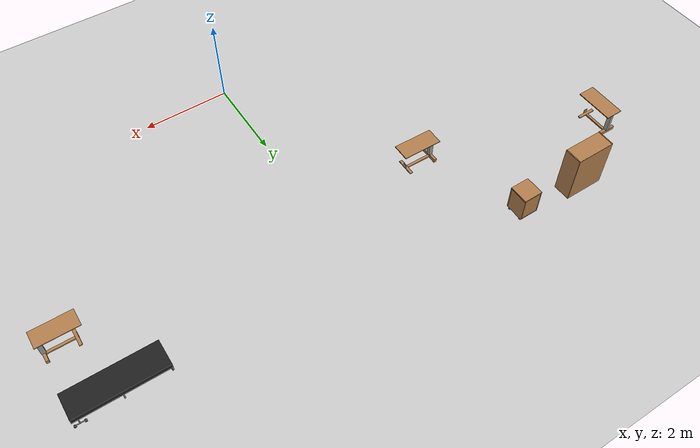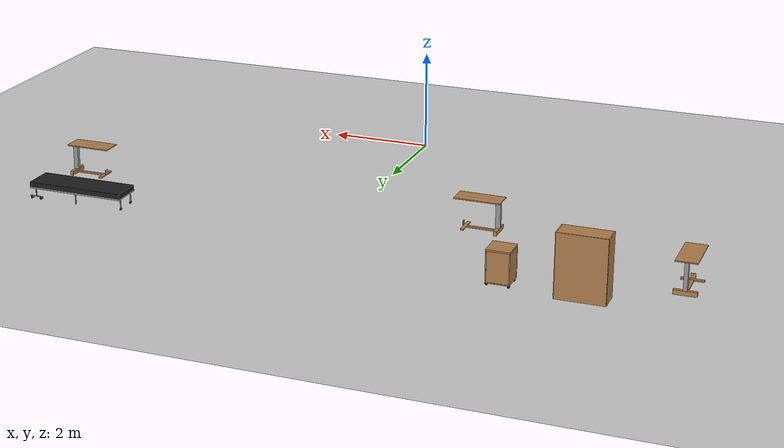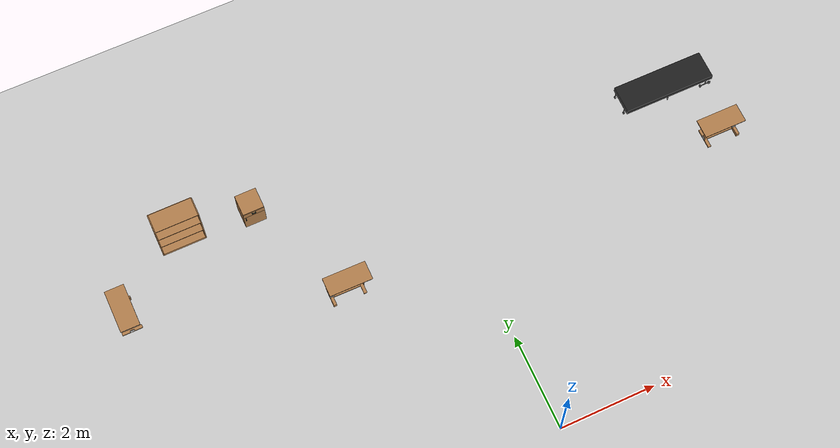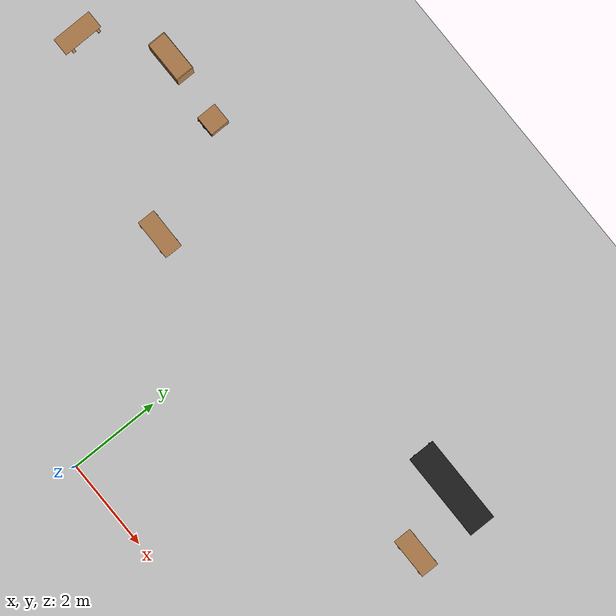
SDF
<sdf version="1.6">
 <world name="default">
  <model name="ground_plane">
   <static>1</static>
   <link name="link">
    <collision name="collision">
     <geometry><plane><normal>0 0 1</normal><size>100 100</size></plane></geometry>
     <surface><friction><ode><mu>100</mu><mu2>50</mu2></ode></friction></surface>
    </collision>
    <visual name="visual">
     <cast_shadows>0</cast_shadows>
     <geometry><plane><normal>0 0 1</normal><size>100 100</size></plane></geometry>
     <material>
      <script><uri>file://media/materials/scripts/gazebo.material</uri><name>Gazebo/Grey</name></script>
     </material>
    </visual>
   </link>
  </model>
  <model name="bed">
   <link name="link">
    <inertial>
     <mass>10</mass>
     <inertia><ixx>1</ixx><ixy>0</ixy><ixz>0</ixz><iyy>1</iyy><iyz>0</iyz><izz>1</izz></inertia>
    </inertial>
    <visual name="cushion">
     <pose>-0.295 -0.975 0.2875 0 -0 0</pose>
     <geometry><box><size>0.59 1.95 0.095</size></box></geometry>
     <material>
      <script>
       <uri>model://base_materials/cloth/scripts</uri>
       <uri>model://base_materials/cloth/textures</uri>
       <name>cloth/black</name>
      </script>
     </material>
    </visual>
    <collision name="collision_cushion">
     <pose>-0.295 -0.975 0.2875 0 -0 0</pose>
     <geometry><box><size>0.59 1.95 0.095</size></box></geometry>
    </collision>
    <visual name="top_frame">
     <pose>-0.295 -0.975 0.225 0 -0 0</pose>
     <geometry><box><size>0.59 1.95 0.03</size></box></geometry>
     <material>
      <script><uri>model://base_materials/color/scripts</uri><name>hsr_color/grey</name></script>
     </material>
    </visual>
    <collision name="collision_top_frame">
     <pose>-0.295 -0.975 0.225 0 -0 0</pose>
     <geometry><box><size>0.59 1.95 0.03</size></box></geometry>
    </collision>
    <visual name="right_front_pole">
     <pose>-0.075 -0.0125 0.125 0 -0 0</pose>
     <geometry><cylinder><radius>0.0125</radius><length>0.17</length></cylinder></geometry>
     <material>
      <script><uri>model://base_materials/color/scripts</uri><name>hsr_color/grey</name></script>
     </material>
    </visual>
    <collision name="collision_right_front_pole">
     <pose>-0.075 -0.0125 0.125 0 -0 0</pose>
     <geometry><cylinder><radius>0.0125</radius><length>0.17</length></cylinder></geometry>
    </collision>
    <visual name="right_front_caster">
     <pose>-0.075 -0.0125 0.02 0 1.57 0</pose>
     <geometry><cylinder><radius>0.02</radius><length>0.04</length></cylinder></geometry>
     <material><script><name>Gazebo/Black</name><uri>__default__</uri></script></material>
    </visual>
    <collision name="collision_right_front_caster">
     <pose>-0.075 -0.0125 0.02 0 1.57 0</pose>
     <geometry><cylinder><radius>0.02</radius><length>0.04</length></cylinder></geometry>
    </collision>
    <visual name="right_back_pole">
     <pose>-0.46 -0.0125 0.125 0 -0 0</pose>
     <geometry><cylinder><radius>0.0125</radius><length>0.17</length></cylinder></geometry>
     <material>
      <script><uri>model://base_materials/color/scripts</uri><name>hsr_color/grey</name></script>
     </material>
    </visual>
    <collision name="collision_right_back_pole">
     <pose>-0.46 -0.0125 0.125 0 -0 0</pose>
     <geometry><cylinder><radius>0.0125</radius><length>0.17</length></cylinder></geometry>
    </collision>
    <visual name="right_back_caster">
     <pose>-0.46 -0.0125 0.02 0 1.57 0</pose>
     <geometry><cylinder><radius>0.02</radius><length>0.04</length></cylinder></geometry>
     <material><script><name>Gazebo/Black</name><uri>__default__</uri></script></material>
    </visual>
    <collision name="collision_back_front_caster">
     <pose>-0.46 -0.0125 0.02 0 1.57 0</pose>
     <geometry><cylinder><radius>0.02</radius><length>0.04</length></cylinder></geometry>
    </collision>
    <visual name="center_front_pole">
     <pose>-0.0425 -0.975 0.105 0 -0 0</pose>
     <geometry><cylinder><radius>0.0125</radius><length>0.21</length></cylinder></geometry>
     <material>
      <script><uri>model://base_materials/color/scripts</uri><name>hsr_color/grey</name></script>
     </material>
    </visual>
    <collision name="collision_center_front_pole">
     <pose>-0.0425 -0.975 0.105 0 -0 0</pose>
     <geometry><cylinder><radius>0.0125</radius><length>0.17</length></cylinder></geometry>
    </collision>
    <visual name="center_back_pole">
     <pose>-0.5475 -0.975 0.105 0 -0 0</pose>
     <geometry><cylinder><radius>0.0125</radius><length>0.21</length></cylinder></geometry>
     <material>
      <script><uri>model://base_materials/color/scripts</uri><name>hsr_color/grey</name></script>
     </material>
    </visual>
    <collision name="collision_center_back_pole">
     <pose>-0.5475 -0.975 0.105 0 -0 0</pose>
     <geometry><cylinder><radius>0.0125</radius><length>0.17</length></cylinder></geometry>
    </collision>
    <visual name="left_front_horizon_pole">
     <pose>-0.01 -1.825 0.06 1.57 -0 0</pose>
     <geometry><cylinder><radius>0.01</radius><length>0.25</length></cylinder></geometry>
     <material>
      <script><uri>model://base_materials/color/scripts</uri><name>hsr_color/grey</name></script>
     </material>
    </visual>
    <collision name="collision_left_front_horizon_pole">
     <pose>-0.01 -1.825 0.06 1.57 -0 0</pose>
     <geometry><cylinder><radius>0.01</radius><length>0.25</length></cylinder></geometry>
    </collision>
    <visual name="left_front_vertical_pole">
     <pose>-0.01 -1.825 0.14 0 -0 0</pose>
     <geometry><cylinder><radius>0.01</radius><length>0.14</length></cylinder></geometry>
     <material>
      <script><uri>model://base_materials/color/scripts</uri><name>hsr_color/grey</name></script>
     </material>
    </visual>
    <collision name="collision_left_front_vertical_pole">
     <pose>-0.01 -1.825 0.14 0 -0 0</pose>
     <geometry><cylinder><radius>0.01</radius><length>0.14</length></cylinder></geometry>
    </collision>
    <visual name="left_front_caster_r">
     <pose>-0.02 -1.725 0.025 0 1.57 0</pose>
     <geometry><cylinder><radius>0.025</radius><length>0.04</length></cylinder></geometry>
     <material><script><name>Gazebo/Black</name><uri>__default__</uri></script></material>
    </visual>
    <collision name="collision_left_front_caster_r">
     <pose>-0.02 -1.725 0.025 0 1.57 0</pose>
     <geometry><cylinder><radius>0.025</radius><length>0.04</length></cylinder></geometry>
    </collision>
    <visual name="left_front_caster_l">
     <pose>-0.02 -1.925 0.025 0 1.57 0</pose>
     <geometry><cylinder><radius>0.025</radius><length>0.04</length></cylinder></geometry>
     <material><script><name>Gazebo/Black</name><uri>__default__</uri></script></material>
    </visual>
    <collision name="collision_left_front_caster_l">
     <pose>-0.02 -1.925 0.025 0 1.57 0</pose>
     <geometry><cylinder><radius>0.025</radius><length>0.04</length></cylinder></geometry>
    </collision>
    <visual name="left_back_horizon_pole">
     <pose>-0.58 -1.825 0.06 1.57 -0 0</pose>
     <geometry><cylinder><radius>0.01</radius><length>0.25</length></cylinder></geometry>
     <material>
      <script><uri>model://base_materials/color/scripts</uri><name>hsr_color/grey</name></script>
     </material>
    </visual>
    <collision name="collision_left_back_horizon_pole">
     <pose>-0.58 -1.825 0.06 1.57 -0 0</pose>
     <geometry><cylinder><radius>0.01</radius><length>0.25</length></cylinder></geometry>
    </collision>
    <visual name="left_back_vertical_pole">
     <pose>-0.58 -1.825 0.14 0 -0 0</pose>
     <geometry><cylinder><radius>0.01</radius><length>0.14</length></cylinder></geometry>
     <material>
      <script><uri>model://base_materials/color/scripts</uri><name>hsr_color/grey</name></script>
     </material>
    </visual>
    <collision name="collision_left_back_vertical_pole">
     <pose>-0.58 -1.825 0.14 0 -0 0</pose>
     <geometry><cylinder><radius>0.01</radius><length>0.14</length></cylinder></geometry>
    </collision>
    <visual name="left_back_caster_r">
     <pose>-0.57 -1.725 0.025 0 1.57 0</pose>
     <geometry><cylinder><radius>0.025</radius><length>0.04</length></cylinder></geometry>
     <material><script><name>Gazebo/Black</name><uri>__default__</uri></script></material>
    </visual>
    <collision name="collision_left_back_caster_r">
     <pose>-0.57 -1.725 0.025 0 1.57 0</pose>
     <geometry><cylinder><radius>0.025</radius><length>0.04</length></cylinder></geometry>
    </collision>
    <visual name="left_back_caster_l">
     <pose>-0.57 -1.925 0.025 0 1.57 0</pose>
     <geometry><cylinder><radius>0.025</radius><length>0.04</length></cylinder></geometry>
     <material><script><name>Gazebo/Black</name><uri>__default__</uri></script></material>
    </visual>
    <collision name="collision_left_back_caster_l">
     <pose>-0.57 -1.925 0.025 0 1.57 0</pose>
     <geometry><cylinder><radius>0.025</radius><length>0.04</length></cylinder></geometry>
    </collision>
    <velocity_decay><linear>0</linear><angular>0</angular></velocity_decay>
   </link>
   <static>1</static>
   <pose>4.11326 5.87023 0 0 -0 1.56725</pose>
  </model>
  <model name="bed_table">
   <link name="link">
    <inertial>
     <pose>0 0.449 0.001 0 -0 0</pose>
     <mass>10</mass>
     <inertia><ixx>1</ixx><ixy>0</ixy><ixz>0</ixz><iyy>1</iyy><iyz>0</iyz><izz>1</izz></inertia>
    </inertial>
    <visual name="top_board">
     <pose>0 0.449 0.625 0 -0 0</pose>
     <geometry><box><size>0.398 0.898 0.02</size></box></geometry>
     <material>
      <script><uri>model://base_materials/wood/scripts/wood.material</uri><name>base_materials/wood</name></script>
     </material>
    </visual>
    <collision name="collision_top_board">
     <pose>0 0.449 0.625 0 -0 0</pose>
     <geometry><box><size>0.398 0.898 0.02</size></box></geometry>
    </collision>
    <visual name="right_pole">
     <pose>0 0.817 0.3515 0 -0 0</pose>
     <geometry><box><size>0.072 0.094 0.527</size></box></geometry>
     <material>
      <script><uri>model://base_materials/color/scripts</uri><name>hsr_color/grey</name></script>
     </material>
    </visual>
    <collision name="collision_right_pole">
     <pose>0 0.817 0.3515 0 -0 0</pose>
     <geometry><box><size>0.072 0.094 0.527</size></box></geometry>
    </collision>
    <visual name="right_bottom_pole">
     <pose>0 0.8225 0.044 0 -0 0</pose>
     <geometry><box><size>0.42 0.063 0.088</size></box></geometry>
     <material>
      <script><uri>model://base_materials/wood/scripts/wood.material</uri><name>base_materials/wood</name></script>
     </material>
    </visual>
    <collision name="collision_right_bottom_pole">
     <pose>0 0.8225 0.044 0 -0 0</pose>
     <geometry><box><size>0.42 0.063 0.088</size></box></geometry>
    </collision>
    <visual name="bottom_center_pole">
     <pose>0 0.502 0.03 0 -0 0</pose>
     <geometry><box><size>0.06 0.578 0.03</size></box></geometry>
     <material>
      <script><uri>model://base_materials/wood/scripts/wood.material</uri><name>base_materials/wood</name></script>
     </material>
    </visual>
    <collision name="collision_bottom_center_pole">
     <pose>0 0.502 0.03 0 -0 0</pose>
     <geometry><box><size>0.06 0.578 0.03</size></box></geometry>
    </collision>
    <visual name="left_bottom_pole">
     <pose>0 0.18 0.0325 0 -0 0</pose>
     <geometry><box><size>0.418 0.066 0.025</size></box></geometry>
     <material>
      <script><uri>model://base_materials/wood/scripts/wood.material</uri><name>base_materials/wood</name></script>
     </material>
    </visual>
    <collision name="collision_left_bottom_pole">
     <pose>0 0.18 0.0325 0 -0 0</pose>
     <geometry><box><size>0.418 0.066 0.025</size></box></geometry>
    </collision>
    <visual name="marker_0010">
     <pose>0 0.14 0.093 0 -0 0</pose>
     <geometry><box><size>0.09 0.001 0.09</size></box></geometry>
     <material>
      <script>
       <uri>model://bed_table/marker/0010/scripts</uri>
       <uri>model://bed_table/marker/0010/textures</uri>
       <name>Marker/0010</name>
      </script>
     </material>
    </visual>
    <collision name="collision_marker_0010">
     <pose>0 0.14 0.093 0 -0 0</pose>
     <geometry><box><size>0.09 0.001 0.09</size></box></geometry>
    </collision>
    <visual name="marker_0010_back_plate">
     <pose>0 0.146 0.093 0 -0 0</pose>
     <geometry><box><size>0.09 0.01 0.09</size></box></geometry>
     <material>
      <script><uri>model://base_materials/wood/scripts/wood.material</uri><name>base_materials/wood</name></script>
     </material>
    </visual>
    <collision name="collision_marker_0010_back_plate">
     <pose>0 0.146 0.093 0 -0 0</pose>
     <geometry><box><size>0.09 0.01 0.09</size></box></geometry>
    </collision>
    <velocity_decay><linear>0</linear><angular>0</angular></velocity_decay>
   </link>
   <static>1</static>
   <pose>5.1741 4.20126 0 0 0 -1.576</pose>
  </model>
  <model name="wagon">
   <link name="link">
    <inertial>
     <mass>10</mass>
     <inertia><ixx>1</ixx><ixy>0</ixy><ixz>0</ixz><iyy>1</iyy><iyz>0</iyz><izz>1</izz></inertia>
    </inertial>
    <visual name="left_board">
     <pose>-0.2325 0.01 0.345 0 -0 0</pose>
     <geometry><box><size>0.415 0.02 0.59</size></box></geometry>
     <material>
      <script><uri>model://base_materials/wood/scripts/wood.material</uri><name>base_materials/wood</name></script>
     </material>
    </visual>
    <collision name="collision_left_board">
     <pose>-0.2325 0.01 0.345 0 -0 0</pose>
     <geometry><box><size>0.415 0.02 0.59</size></box></geometry>
    </collision>
    <visual name="right_board">
     <pose>-0.2325 0.4325 0.345 0 -0 0</pose>
     <geometry><box><size>0.415 0.02 0.59</size></box></geometry>
     <material>
      <script><uri>model://base_materials/wood/scripts/wood.material</uri><name>base_materials/wood</name></script>
     </material>
    </visual>
    <collision name="collision_right_board">
     <pose>-0.2325 0.4325 0.345 0 -0 0</pose>
     <geometry><box><size>0.415 0.02 0.59</size></box></geometry>
    </collision>
    <visual name="top_board">
     <pose>-0.22 0.2225 0.655 0 -0 0</pose>
     <geometry><box><size>0.44 0.445 0.03</size></box></geometry>
     <material>
      <script><uri>model://base_materials/wood/scripts/wood.material</uri><name>base_materials/wood</name></script>
     </material>
    </visual>
    <collision name="collision_top_board">
     <pose>-0.22 0.2225 0.655 0 -0 0</pose>
     <geometry><box><size>0.44 0.445 0.03</size></box></geometry>
    </collision>
    <visual name="back_board">
     <pose>-0.425 0.2225 0.345 0 -0 0</pose>
     <geometry><box><size>0.02 0.405 0.59</size></box></geometry>
     <material>
      <script><uri>model://base_materials/wood/scripts/wood.material</uri><name>base_materials/wood</name></script>
     </material>
    </visual>
    <collision name="collision_back_board">
     <pose>-0.425 0.2225 0.345 0 -0 0</pose>
     <geometry><box><size>0.02 0.405 0.59</size></box></geometry>
    </collision>
    <visual name="bottom_board">
     <pose>-0.2325 0.2225 0.06 0 -0 0</pose>
     <geometry><box><size>0.415 0.405 0.02</size></box></geometry>
     <material>
      <script><uri>model://base_materials/wood/scripts/wood.material</uri><name>base_materials/wood</name></script>
     </material>
    </visual>
    <collision name="collision_bottom_board">
     <pose>-0.2325 0.2225 0.06 0 -0 0</pose>
     <geometry><box><size>0.415 0.405 0.02</size></box></geometry>
    </collision>
    <visual name="1st_drawer">
     <pose>-0.0125 0.2225 0.57 0 -0 0</pose>
     <geometry><box><size>0.025 0.445 0.14</size></box></geometry>
     <material>
      <script><uri>model://base_materials/wood/scripts/wood.material</uri><name>base_materials/wood</name></script>
     </material>
    </visual>
    <collision name="collision_1st_drawer">
     <pose>-0.0125 0.2225 0.57 0 -0 0</pose>
     <geometry><box><size>0.025 0.445 0.14</size></box></geometry>
    </collision>
    <visual name="1st_drawer_handle_l1">
     <pose>0.0115 0.1895 0.6 3.14159 1.57079 3.14159</pose>
     <geometry><cylinder><radius>0.007</radius><length>0.023</length></cylinder></geometry>
     <material>
      <ambient>0.18431 0.3098 0.3098 1</ambient>
      <diffuse>0.18431 0.3098 0.3098 1</diffuse>
      <specular>0.1 0.1 0.1 1</specular>
     </material>
    </visual>
    <collision name="collision_1st_drawer_handle_l1">
     <pose>0.0115 0.1895 0.6 3.14159 1.57079 3.14159</pose>
     <geometry><cylinder><radius>0.007</radius><length>0.023</length></cylinder></geometry>
    </collision>
    <visual name="1st_drawer_handle_l2">
     <pose>0.023 0.1895 0.6 0 -0 0</pose>
     <geometry><sphere><radius>0.007</radius></sphere></geometry>
     <material>
      <ambient>0.18431 0.3098 0.3098 1</ambient>
      <diffuse>0.18431 0.3098 0.3098 1</diffuse>
      <specular>0.1 0.1 0.1 1</specular>
     </material>
    </visual>
    <collision name="collision_1st_drawer_handle_l2">
     <pose>0.023 0.1895 0.6 0 -0 0</pose>
     <geometry><sphere><radius>0.007</radius></sphere></geometry>
    </collision>
    <visual name="1st_drawer_handle_r1">
     <pose>0.0115 0.2555 0.6 3.14159 1.57079 3.14159</pose>
     <geometry><cylinder><radius>0.007</radius><length>0.023</length></cylinder></geometry>
     <material>
      <ambient>0.18431 0.3098 0.3098 1</ambient>
      <diffuse>0.18431 0.3098 0.3098 1</diffuse>
      <specular>0.1 0.1 0.1 1</specular>
     </material>
    </visual>
    <collision name="collision_1st_drawer_handle_r1">
     <pose>0.0115 0.2555 0.6 3.14159 1.57079 3.14159</pose>
     <geometry><cylinder><radius>0.007</radius><length>0.023</length></cylinder></geometry>
    </collision>
    <visual name="1st_drawer_handle_r2">
     <pose>0.023 0.2555 0.6 0 -0 0</pose>
     <geometry><sphere><radius>0.007</radius></sphere></geometry>
     <material>
      <ambient>0.18431 0.3098 0.3098 1</ambient>
      <diffuse>0.18431 0.3098 0.3098 1</diffuse>
      <specular>0.1 0.1 0.1 1</specular>
     </material>
    </visual>
    <collision name="collision_1st_drawer_handle_r2">
     <pose>0.023 0.2555 0.6 0 -0 0</pose>
     <geometry><sphere><radius>0.007</radius></sphere></geometry>
    </collision>
    <visual name="1st_drawer_handle_center">
     <pose>0.023 0.2225 0.6 1.5708 -0 0</pose>
     <geometry><cylinder><radius>0.007</radius><length>0.066</length></cylinder></geometry>
     <material>
      <ambient>0.18431 0.3098 0.3098 1</ambient>
      <diffuse>0.18431 0.3098 0.3098 1</diffuse>
      <specular>0.1 0.1 0.1 1</specular>
     </material>
    </visual>
    <collision name="collision_1st_drawer_handle_center">
     <pose>0.023 0.2225 0.6 1.5708 -0 0</pose>
     <geometry><cylinder><radius>0.007</radius><length>0.066</length></cylinder></geometry>
    </collision>
    <visual name="2nd_drawer">
     <pose>-0.0125 0.2225 0.275 0 -0 0</pose>
     <geometry><box><size>0.025 0.445 0.45</size></box></geometry>
     <material>
      <script><uri>model://base_materials/wood/scripts/wood.material</uri><name>base_materials/wood</name></script>
     </material>
    </visual>
    <collision name="collision_2nd_drawer">
     <pose>-0.0125 0.2225 0.275 0 -0 0</pose>
     <geometry><box><size>0.025 0.445 0.45</size></box></geometry>
    </collision>
    <visual name="2nd_drawer_handle_top1">
     <pose>0.0115 0.04 0.47 3.14159 1.57079 3.14159</pose>
     <geometry><cylinder><radius>0.007</radius><length>0.023</length></cylinder></geometry>
     <material>
      <ambient>0.18431 0.3098 0.3098 1</ambient>
      <diffuse>0.18431 0.3098 0.3098 1</diffuse>
      <specular>0.1 0.1 0.1 1</specular>
     </material>
    </visual>
    <collision name="collision_2nd_drawer_handle_top1">
     <pose>0.0115 0.04 0.47 3.14159 1.57079 3.14159</pose>
     <geometry><cylinder><radius>0.007</radius><length>0.023</length></cylinder></geometry>
    </collision>
    <visual name="2nd_drawer_handle_top2">
     <pose>0.023 0.04 0.47 0 -0 0</pose>
     <geometry><sphere><radius>0.007</radius></sphere></geometry>
     <material>
      <ambient>0.18431 0.3098 0.3098 1</ambient>
      <diffuse>0.18431 0.3098 0.3098 1</diffuse>
      <specular>0.1 0.1 0.1 1</specular>
     </material>
    </visual>
    <collision name="2nd_drawer_handle_top2">
     <pose>0.023 0.04 0.47 0 -0 0</pose>
     <geometry><sphere><radius>0.007</radius></sphere></geometry>
    </collision>
    <visual name="2nd_drawer_handle_bottom1">
     <pose>0.0115 0.04 0.404 3.14159 1.57079 3.14159</pose>
     <geometry><cylinder><radius>0.007</radius><length>0.023</length></cylinder></geometry>
     <material>
      <ambient>0.18431 0.3098 0.3098 1</ambient>
      <diffuse>0.18431 0.3098 0.3098 1</diffuse>
      <specular>0.1 0.1 0.1 1</specular>
     </material>
    </visual>
    <collision name="collision_2nd_drawer_handle_bottom1">
     <pose>0.0115 0.04 0.404 3.14159 1.57079 3.14159</pose>
     <geometry><cylinder><radius>0.007</radius><length>0.023</length></cylinder></geometry>
    </collision>
    <visual name="2nd_drawer_handle_bottom2">
     <pose>0.023 0.04 0.404 0 -0 0</pose>
     <geometry><sphere><radius>0.007</radius></sphere></geometry>
     <material>
      <ambient>0.18431 0.3098 0.3098 1</ambient>
      <diffuse>0.18431 0.3098 0.3098 1</diffuse>
      <specular>0.1 0.1 0.1 1</specular>
     </material>
    </visual>
    <collision name="2nd_drawer_handle_bottom2">
     <pose>0.023 0.04 0.404 0 -0 0</pose>
     <geometry><sphere><radius>0.007</radius></sphere></geometry>
    </collision>
    <visual name="2nd_drawer_handle_center">
     <pose>0.023 0.04 0.437 0 -0 0</pose>
     <geometry><cylinder><radius>0.007</radius><length>0.066</length></cylinder></geometry>
     <material>
      <ambient>0.18431 0.3098 0.3098 1</ambient>
      <diffuse>0.18431 0.3098 0.3098 1</diffuse>
      <specular>0.1 0.1 0.1 1</specular>
     </material>
    </visual>
    <collision name="collision_2nd_drawer_handle_center">
     <pose>0.023 0.04 0.437 0 -0 0</pose>
     <geometry><cylinder><radius>0.007</radius><length>0.066</length></cylinder></geometry>
    </collision>
    <visual name="left_front_caster">
     <pose>-0.07 0.025 0.025 3.14159 1.57079 3.14159</pose>
     <geometry><cylinder><radius>0.025</radius><length>0.035</length></cylinder></geometry>
     <material><script><name>Gazebo/Black</name><uri>__default__</uri></script></material>
    </visual>
    <collision name="collision_left_front_caster">
     <pose>-0.07 0.025 0.025 3.14159 1.57079 3.14159</pose>
     <geometry><cylinder><radius>0.025</radius><length>0.035</length></cylinder></geometry>
    </collision>
    <visual name="right_front_caster">
     <pose>-0.07 0.42 0.025 3.14159 1.57079 3.14159</pose>
     <geometry><cylinder><radius>0.025</radius><length>0.035</length></cylinder></geometry>
     <material><script><name>Gazebo/Black</name><uri>__default__</uri></script></material>
    </visual>
    <collision name="collision_right_front_caster">
     <pose>-0.07 0.42 0.025 3.14159 1.57079 3.14159</pose>
     <geometry><cylinder><radius>0.025</radius><length>0.035</length></cylinder></geometry>
    </collision>
    <visual name="left_back_caster">
     <pose>-0.39 0.025 0.025 3.14159 1.57079 3.14159</pose>
     <geometry><cylinder><radius>0.025</radius><length>0.035</length></cylinder></geometry>
     <material><script><name>Gazebo/Black</name><uri>__default__</uri></script></material>
    </visual>
    <collision name="collision_left_back_caster">
     <pose>-0.39 0.025 0.025 3.14159 1.57079 3.14159</pose>
     <geometry><cylinder><radius>0.025</radius><length>0.035</length></cylinder></geometry>
    </collision>
    <visual name="right_back_caster">
     <pose>-0.39 0.42 0.025 3.14159 1.57079 3.14159</pose>
     <geometry><cylinder><radius>0.025</radius><length>0.035</length></cylinder></geometry>
     <material><script><name>Gazebo/Black</name><uri>__default__</uri></script></material>
    </visual>
    <collision name="collision_right_back_caster">
     <pose>-0.39 0.42 0.025 3.14159 1.57079 3.14159</pose>
     <geometry><cylinder><radius>0.025</radius><length>0.035</length></cylinder></geometry>
    </collision>
    <velocity_decay><linear>0</linear><angular>0</angular></velocity_decay>
   </link>
   <static>1</static>
   <pose>-3.86281 6.29786 0 0 0 -1.56746</pose>
  </model>
  <model name="bed_table_0">
   <link name="link">
    <inertial>
     <pose>0 0.449 0.001 0 -0 0</pose>
     <mass>10</mass>
     <inertia><ixx>1</ixx><ixy>0</ixy><ixz>0</ixz><iyy>1</iyy><iyz>0</iyz><izz>1</izz></inertia>
    </inertial>
    <visual name="top_board">
     <pose>0 0.449 0.625 0 -0 0</pose>
     <geometry><box><size>0.398 0.898 0.02</size></box></geometry>
     <material>
      <script><uri>model://base_materials/wood/scripts/wood.material</uri><name>base_materials/wood</name></script>
     </material>
    </visual>
    <collision name="collision_top_board">
     <pose>0 0.449 0.625 0 -0 0</pose>
     <geometry><box><size>0.398 0.898 0.02</size></box></geometry>
    </collision>
    <visual name="right_pole">
     <pose>0 0.817 0.3515 0 -0 0</pose>
     <geometry><box><size>0.072 0.094 0.527</size></box></geometry>
     <material>
      <script><uri>model://base_materials/color/scripts</uri><name>hsr_color/grey</name></script>
     </material>
    </visual>
    <collision name="collision_right_pole">
     <pose>0 0.817 0.3515 0 -0 0</pose>
     <geometry><box><size>0.072 0.094 0.527</size></box></geometry>
    </collision>
    <visual name="right_bottom_pole">
     <pose>0 0.8225 0.044 0 -0 0</pose>
     <geometry><box><size>0.42 0.063 0.088</size></box></geometry>
     <material>
      <script><uri>model://base_materials/wood/scripts/wood.material</uri><name>base_materials/wood</name></script>
     </material>
    </visual>
    <collision name="collision_right_bottom_pole">
     <pose>0 0.8225 0.044 0 -0 0</pose>
     <geometry><box><size>0.42 0.063 0.088</size></box></geometry>
    </collision>
    <visual name="bottom_center_pole">
     <pose>0 0.502 0.03 0 -0 0</pose>
     <geometry><box><size>0.06 0.578 0.03</size></box></geometry>
     <material>
      <script><uri>model://base_materials/wood/scripts/wood.material</uri><name>base_materials/wood</name></script>
     </material>
    </visual>
    <collision name="collision_bottom_center_pole">
     <pose>0 0.502 0.03 0 -0 0</pose>
     <geometry><box><size>0.06 0.578 0.03</size></box></geometry>
    </collision>
    <visual name="left_bottom_pole">
     <pose>0 0.18 0.0325 0 -0 0</pose>
     <geometry><box><size>0.418 0.066 0.025</size></box></geometry>
     <material>
      <script><uri>model://base_materials/wood/scripts/wood.material</uri><name>base_materials/wood</name></script>
     </material>
    </visual>
    <collision name="collision_left_bottom_pole">
     <pose>0 0.18 0.0325 0 -0 0</pose>
     <geometry><box><size>0.418 0.066 0.025</size></box></geometry>
    </collision>
    <visual name="marker_0010">
     <pose>0 0.14 0.093 0 -0 0</pose>
     <geometry><box><size>0.09 0.001 0.09</size></box></geometry>
     <material>
      <script>
       <uri>model://bed_table/marker/0010/scripts</uri>
       <uri>model://bed_table/marker/0010/textures</uri>
       <name>Marker/0010</name>
      </script>
     </material>
    </visual>
    <collision name="collision_marker_0010">
     <pose>0 0.14 0.093 0 -0 0</pose>
     <geometry><box><size>0.09 0.001 0.09</size></box></geometry>
    </collision>
    <visual name="marker_0010_back_plate">
     <pose>0 0.146 0.093 0 -0 0</pose>
     <geometry><box><size>0.09 0.01 0.09</size></box></geometry>
     <material>
      <script><uri>model://base_materials/wood/scripts/wood.material</uri><name>base_materials/wood</name></script>
     </material>
    </visual>
    <collision name="collision_marker_0010_back_plate">
     <pose>0 0.146 0.093 0 -0 0</pose>
     <geometry><box><size>0.09 0.01 0.09</size></box></geometry>
    </collision>
    <velocity_decay><linear>0</linear><angular>0</angular></velocity_decay>
   </link>
   <static>1</static>
   <pose>-6.69359 5.05597 0 0 -0 0</pose>
  </model>
  <model name="bed_table_1">
   <link name="link">
    <inertial>
     <pose>0 0.449 0.001 0 -0 0</pose>
     <mass>10</mass>
     <inertia><ixx>1</ixx><ixy>0</ixy><ixz>0</ixz><iyy>1</iyy><iyz>0</iyz><izz>1</izz></inertia>
    </inertial>
    <visual name="top_board">
     <pose>0 0.449 0.625 0 -0 0</pose>
     <geometry><box><size>0.398 0.898 0.02</size></box></geometry>
     <material>
      <script><uri>model://base_materials/wood/scripts/wood.material</uri><name>base_materials/wood</name></script>
     </material>
    </visual>
    <collision name="collision_top_board">
     <pose>0 0.449 0.625 0 -0 0</pose>
     <geometry><box><size>0.398 0.898 0.02</size></box></geometry>
    </collision>
    <visual name="right_pole">
     <pose>0 0.817 0.3515 0 -0 0</pose>
     <geometry><box><size>0.072 0.094 0.527</size></box></geometry>
     <material>
      <script><uri>model://base_materials/color/scripts</uri><name>hsr_color/grey</name></script>
     </material>
    </visual>
    <collision name="collision_right_pole">
     <pose>0 0.817 0.3515 0 -0 0</pose>
     <geometry><box><size>0.072 0.094 0.527</size></box></geometry>
    </collision>
    <visual name="right_bottom_pole">
     <pose>0 0.8225 0.044 0 -0 0</pose>
     <geometry><box><size>0.42 0.063 0.088</size></box></geometry>
     <material>
      <script><uri>model://base_materials/wood/scripts/wood.material</uri><name>base_materials/wood</name></script>
     </material>
    </visual>
    <collision name="collision_right_bottom_pole">
     <pose>0 0.8225 0.044 0 -0 0</pose>
     <geometry><box><size>0.42 0.063 0.088</size></box></geometry>
    </collision>
    <visual name="bottom_center_pole">
     <pose>0 0.502 0.03 0 -0 0</pose>
     <geometry><box><size>0.06 0.578 0.03</size></box></geometry>
     <material>
      <script><uri>model://base_materials/wood/scripts/wood.material</uri><name>base_materials/wood</name></script>
     </material>
    </visual>
    <collision name="collision_bottom_center_pole">
     <pose>0 0.502 0.03 0 -0 0</pose>
     <geometry><box><size>0.06 0.578 0.03</size></box></geometry>
    </collision>
    <visual name="left_bottom_pole">
     <pose>0 0.18 0.0325 0 -0 0</pose>
     <geometry><box><size>0.418 0.066 0.025</size></box></geometry>
     <material>
      <script><uri>model://base_materials/wood/scripts/wood.material</uri><name>base_materials/wood</name></script>
     </material>
    </visual>
    <collision name="collision_left_bottom_pole">
     <pose>0 0.18 0.0325 0 -0 0</pose>
     <geometry><box><size>0.418 0.066 0.025</size></box></geometry>
    </collision>
    <visual name="marker_0010">
     <pose>0 0.14 0.093 0 -0 0</pose>
     <geometry><box><size>0.09 0.001 0.09</size></box></geometry>
     <material>
      <script>
       <uri>model://bed_table/marker/0010/scripts</uri>
       <uri>model://bed_table/marker/0010/textures</uri>
       <name>Marker/0010</name>
      </script>
     </material>
    </visual>
    <collision name="collision_marker_0010">
     <pose>0 0.14 0.093 0 -0 0</pose>
     <geometry><box><size>0.09 0.001 0.09</size></box></geometry>
    </collision>
    <visual name="marker_0010_back_plate">
     <pose>0 0.146 0.093 0 -0 0</pose>
     <geometry><box><size>0.09 0.01 0.09</size></box></geometry>
     <material>
      <script><uri>model://base_materials/wood/scripts/wood.material</uri><name>base_materials/wood</name></script>
     </material>
    </visual>
    <collision name="collision_marker_0010_back_plate">
     <pose>0 0.146 0.093 0 -0 0</pose>
     <geometry><box><size>0.09 0.01 0.09</size></box></geometry>
    </collision>
    <velocity_decay><linear>0</linear><angular>0</angular></velocity_decay>
   </link>
   <static>1</static>
   <pose>-2.08388 4.24177 0 0 -0 1.55986</pose>
  </model>
  <model name="bookshelf">
   <static>1</static>
   <link name="link">
    <inertial><mass>1</mass></inertial>
    <collision name="back">
     <pose>0 0.005 0.6 0 -0 0</pose>
     <geometry><box><size>0.9 0.01 1.2</size></box></geometry>
    </collision>
    <visual name="visual1">
     <pose>0 0.005 0.6 0 -0 0</pose>
     <geometry><box><size>0.9 0.01 1.2</size></box></geometry>
     <material>
      <script><uri>file://media/materials/scripts/gazebo.material</uri><name>Gazebo/Wood</name></script>
     </material>
    </visual>
    <collision name="left_side">
     <pose>0.45 -0.195 0.6 0 -0 0</pose>
     <geometry><box><size>0.02 0.4 1.2</size></box></geometry>
    </collision>
    <visual name="visual2">
     <pose>0.45 -0.195 0.6 0 -0 0</pose>
     <geometry><box><size>0.02 0.4 1.2</size></box></geometry>
     <material>
      <script><uri>file://media/materials/scripts/gazebo.material</uri><name>Gazebo/Wood</name></script>
     </material>
    </visual>
    <collision name="right_side">
     <pose>-0.45 -0.195 0.6 0 -0 0</pose>
     <geometry><box><size>0.02 0.4 1.2</size></box></geometry>
    </collision>
    <visual name="visual3">
     <pose>-0.45 -0.195 0.6 0 -0 0</pose>
     <geometry><box><size>0.02 0.4 1.2</size></box></geometry>
     <material>
      <script><uri>file://media/materials/scripts/gazebo.material</uri><name>Gazebo/Wood</name></script>
     </material>
    </visual>
    <collision name="bottom">
     <pose>0 -0.195 0.03 0 -0 0</pose>
     <geometry><box><size>0.88 0.4 0.06</size></box></geometry>
    </collision>
    <visual name="visual4">
     <pose>0 -0.195 0.03 0 -0 0</pose>
     <geometry><box><size>0.88 0.4 0.06</size></box></geometry>
     <material>
      <script><uri>file://media/materials/scripts/gazebo.material</uri><name>Gazebo/Wood</name></script>
     </material>
    </visual>
    <collision name="top">
     <pose>0 -0.195 1.19 0 -0 0</pose>
     <geometry><box><size>0.88 0.4 0.02</size></box></geometry>
    </collision>
    <visual name="visual5">
     <pose>0 -0.195 1.19 0 -0 0</pose>
     <geometry><box><size>0.88 0.4 0.02</size></box></geometry>
     <material>
      <script><uri>file://media/materials/scripts/gazebo.material</uri><name>Gazebo/Wood</name></script>
     </material>
    </visual>
    <collision name="low_shelf">
     <pose>0 -0.195 0.43 0 -0 0</pose>
     <geometry><box><size>0.88 0.4 0.02</size></box></geometry>
    </collision>
    <visual name="visual6">
     <pose>0 -0.195 0.43 0 -0 0</pose>
     <geometry><box><size>0.88 0.4 0.02</size></box></geometry>
     <material>
      <script><uri>file://media/materials/scripts/gazebo.material</uri><name>Gazebo/Wood</name></script>
     </material>
    </visual>
    <collision name="high_shelf">
     <pose>0 -0.195 0.8 0 -0 0</pose>
     <geometry><box><size>0.88 0.4 0.02</size></box></geometry>
    </collision>
    <visual name="visual7">
     <pose>0 -0.195 0.8 0 -0 0</pose>
     <geometry><box><size>0.88 0.4 0.02</size></box></geometry>
     <material>
      <script><uri>file://media/materials/scripts/gazebo.material</uri><name>Gazebo/Wood</name></script>
     </material>
    </visual>
   </link>
   <pose>-5.11451 6.8342 0 0 -0 0</pose>
  </model>
 </world>
</sdf>
